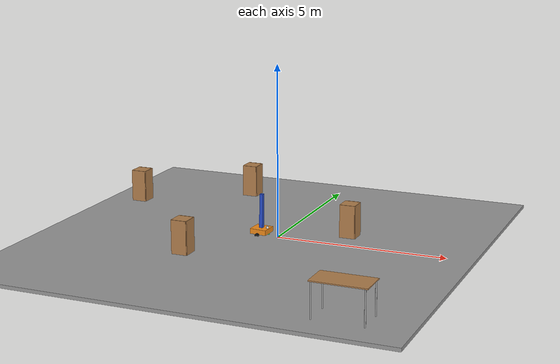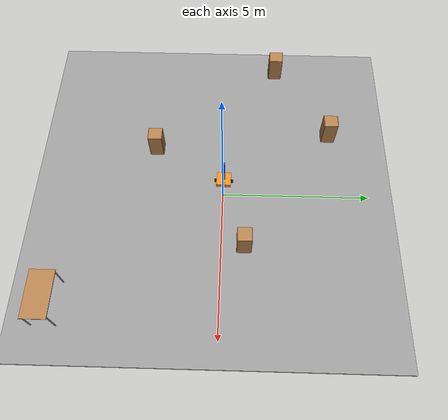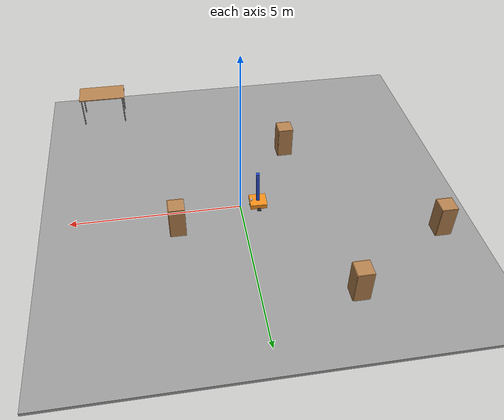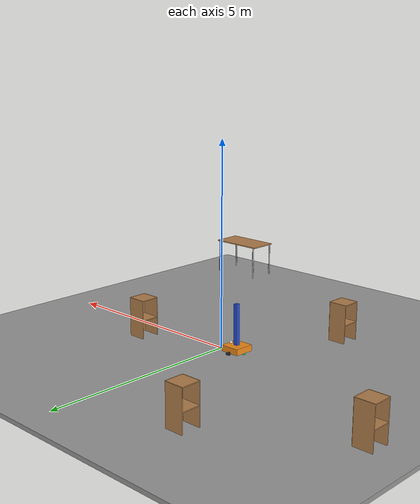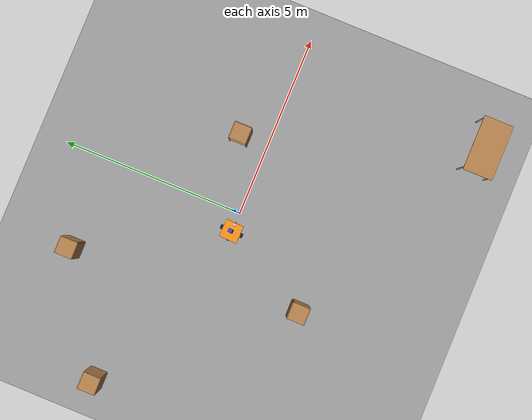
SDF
<sdf version="1.7">
 <world name="default">
  <light name="sun" type="directional">
   <pose>0 0 10 0 -0 0</pose>
   <diffuse>0.8 0.8 0.8 1</diffuse>
   <specular>0.2 0.2 0.2 1</specular>
   <attenuation>
    <range>1000</range>
    <constant>0.9</constant>
    <linear>0.01</linear>
    <quadratic>0.001</quadratic>
   </attenuation>
   <direction>-0.5 0.1 -0.9</direction>
   <spot><inner_angle>0</inner_angle><outer_angle>0</outer_angle><falloff>0</falloff></spot>
  </light>
  <model name="ground_plane">
   <static>1</static>
   <link name="link">
    <collision name="collision">
     <geometry><plane><normal>0 0 1</normal><size>100 100</size></plane></geometry>
     <surface>
      <contact><collide_bitmask>65535</collide_bitmask></contact>
      <friction><ode><mu>100</mu><mu2>50</mu2></ode></friction>
     </surface>
    </collision>
    <visual name="visual">
     <cast_shadows>0</cast_shadows>
     <geometry><plane><normal>0 0 1</normal><size>100 100</size></plane></geometry>
     <material>
      <script><uri>file://media/materials/scripts/gazebo.material</uri><name>Gazebo/Grey</name></script>
     </material>
    </visual>
   </link>
  </model>
  <gravity>0 0 -9.8</gravity>
  <magnetic_field>6e-06 2.3e-05 -4.2e-05</magnetic_field>
  <atmosphere type="adiabatic"/>
  <physics type="ode">
   <max_step_size>0.001</max_step_size>
   <real_time_factor>1</real_time_factor>
   <real_time_update_rate>1000</real_time_update_rate>
  </physics>
  <scene><ambient>0.4 0.4 0.4 1</ambient><background>0.7 0.7 0.7 1</background><shadows>1</shadows></scene>
  <spherical_coordinates>
   <surface_model>EARTH_WGS84</surface_model>
   <latitude_deg>0</latitude_deg>
   <longitude_deg>0</longitude_deg>
   <elevation>0</elevation>
   <heading_deg>0</heading_deg>
  </spherical_coordinates>
  <model name="cabinet">
   <static>1</static>
   <link name="cabinet_bottom_plate">
    <inertial>
     <pose>0 0 -1 0 -0 0</pose>
     <inertia><ixx>2.05</ixx><ixy>0</ixy><ixz>0</ixz><iyy>2.05</iyy><iyz>0</iyz><izz>2.05</izz></inertia>
     <mass>25</mass>
    </inertial>
    <collision name="cabinet_bottom_plate_geom">
     <pose>0 0 0.01 0 -0 0</pose>
     <geometry><box><size>0.45 0.45 0.02</size></box></geometry>
    </collision>
    <visual name="cabinet_bottom_plate_geom_visual">
     <pose>0 0 0.01 0 -0 0</pose>
     <geometry><box><size>0.45 0.45 0.02</size></box></geometry>
     <material>
      <script><uri>file://media/materials/scripts/gazebo.material</uri><name>Gazebo/Wood</name></script>
     </material>
    </visual>
    <collision name="cabinet_bottom_plate_geom_cabinet_back_plate">
     <pose>0.235 0 0.51 0 -0 0</pose>
     <geometry><box><size>0.02 0.45 1.02</size></box></geometry>
    </collision>
    <visual name="cabinet_bottom_plate_geom_cabinet_back_plate_visual">
     <pose>0.235 0 0.51 0 -0 0</pose>
     <geometry><box><size>0.02 0.45 1.02</size></box></geometry>
     <material>
      <script><uri>file://media/materials/scripts/gazebo.material</uri><name>Gazebo/Wood</name></script>
     </material>
    </visual>
    <collision name="cabinet_bottom_plate_geom_cabinet_left_plate">
     <pose>0 0.235 0.51 0 -0 0</pose>
     <geometry><box><size>0.45 0.02 1.02</size></box></geometry>
    </collision>
    <visual name="cabinet_bottom_plate_geom_cabinet_left_plate_visual">
     <pose>0 0.235 0.51 0 -0 0</pose>
     <geometry><box><size>0.45 0.02 1.02</size></box></geometry>
     <material>
      <script><uri>file://media/materials/scripts/gazebo.material</uri><name>Gazebo/Wood</name></script>
     </material>
    </visual>
    <collision name="cabinet_bottom_plate_geom_cabinet_middle_plate">
     <pose>0 0 0.51 0 -0 0</pose>
     <geometry><box><size>0.45 0.45 0.02</size></box></geometry>
    </collision>
    <visual name="cabinet_bottom_plate_geom_cabinet_middle_plate_visual">
     <pose>0 0 0.51 0 -0 0</pose>
     <geometry><box><size>0.45 0.45 0.02</size></box></geometry>
     <material>
      <script><uri>file://media/materials/scripts/gazebo.material</uri><name>Gazebo/Wood</name></script>
     </material>
    </visual>
    <collision name="cabinet_bottom_plate_geom_cabinet_right_plate">
     <pose>0 -0.235 0.51 0 -0 0</pose>
     <geometry><box><size>0.45 0.02 1.02</size></box></geometry>
    </collision>
    <visual name="cabinet_bottom_plate_geom_cabinet_right_plate_visual">
     <pose>0 -0.235 0.51 0 -0 0</pose>
     <geometry><box><size>0.45 0.02 1.02</size></box></geometry>
     <material>
      <script><uri>file://media/materials/scripts/gazebo.material</uri><name>Gazebo/Wood</name></script>
     </material>
    </visual>
    <collision name="cabinet_bottom_plate_geom_cabinet_top_plate">
     <pose>0 0 1.01 0 -0 0</pose>
     <geometry><box><size>0.45 0.45 0.02</size></box></geometry>
    </collision>
    <visual name="cabinet_bottom_plate_geom_cabinet_top_plate_visual">
     <pose>0 0 1.01 0 -0 0</pose>
     <geometry><box><size>0.45 0.45 0.02</size></box></geometry>
     <material>
      <script><uri>file://media/materials/scripts/gazebo.material</uri><name>Gazebo/Wood</name></script>
     </material>
    </visual>
   </link>
   <pose>-5.46896 1.86982 0 0 -0 0</pose>
  </model>
  <model name="cabinet_0">
   <static>1</static>
   <link name="cabinet_bottom_plate">
    <inertial>
     <pose>0 0 -1 0 -0 0</pose>
     <inertia><ixx>2.05</ixx><ixy>0</ixy><ixz>0</ixz><iyy>2.05</iyy><iyz>0</iyz><izz>2.05</izz></inertia>
     <mass>25</mass>
    </inertial>
    <collision name="cabinet_bottom_plate_geom">
     <pose>0 0 0.01 0 -0 0</pose>
     <geometry><box><size>0.45 0.45 0.02</size></box></geometry>
    </collision>
    <visual name="cabinet_bottom_plate_geom_visual">
     <pose>0 0 0.01 0 -0 0</pose>
     <geometry><box><size>0.45 0.45 0.02</size></box></geometry>
     <material>
      <script><uri>file://media/materials/scripts/gazebo.material</uri><name>Gazebo/Wood</name></script>
     </material>
    </visual>
    <collision name="cabinet_bottom_plate_geom_cabinet_back_plate">
     <pose>0.235 0 0.51 0 -0 0</pose>
     <geometry><box><size>0.02 0.45 1.02</size></box></geometry>
    </collision>
    <visual name="cabinet_bottom_plate_geom_cabinet_back_plate_visual">
     <pose>0.235 0 0.51 0 -0 0</pose>
     <geometry><box><size>0.02 0.45 1.02</size></box></geometry>
     <material>
      <script><uri>file://media/materials/scripts/gazebo.material</uri><name>Gazebo/Wood</name></script>
     </material>
    </visual>
    <collision name="cabinet_bottom_plate_geom_cabinet_left_plate">
     <pose>0 0.235 0.51 0 -0 0</pose>
     <geometry><box><size>0.45 0.02 1.02</size></box></geometry>
    </collision>
    <visual name="cabinet_bottom_plate_geom_cabinet_left_plate_visual">
     <pose>0 0.235 0.51 0 -0 0</pose>
     <geometry><box><size>0.45 0.02 1.02</size></box></geometry>
     <material>
      <script><uri>file://media/materials/scripts/gazebo.material</uri><name>Gazebo/Wood</name></script>
     </material>
    </visual>
    <collision name="cabinet_bottom_plate_geom_cabinet_middle_plate">
     <pose>0 0 0.51 0 -0 0</pose>
     <geometry><box><size>0.45 0.45 0.02</size></box></geometry>
    </collision>
    <visual name="cabinet_bottom_plate_geom_cabinet_middle_plate_visual">
     <pose>0 0 0.51 0 -0 0</pose>
     <geometry><box><size>0.45 0.45 0.02</size></box></geometry>
     <material>
      <script><uri>file://media/materials/scripts/gazebo.material</uri><name>Gazebo/Wood</name></script>
     </material>
    </visual>
    <collision name="cabinet_bottom_plate_geom_cabinet_right_plate">
     <pose>0 -0.235 0.51 0 -0 0</pose>
     <geometry><box><size>0.45 0.02 1.02</size></box></geometry>
    </collision>
    <visual name="cabinet_bottom_plate_geom_cabinet_right_plate_visual">
     <pose>0 -0.235 0.51 0 -0 0</pose>
     <geometry><box><size>0.45 0.02 1.02</size></box></geometry>
     <material>
      <script><uri>file://media/materials/scripts/gazebo.material</uri><name>Gazebo/Wood</name></script>
     </material>
    </visual>
    <collision name="cabinet_bottom_plate_geom_cabinet_top_plate">
     <pose>0 0 1.01 0 -0 0</pose>
     <geometry><box><size>0.45 0.45 0.02</size></box></geometry>
    </collision>
    <visual name="cabinet_bottom_plate_geom_cabinet_top_plate_visual">
     <pose>0 0 1.01 0 -0 0</pose>
     <geometry><box><size>0.45 0.45 0.02</size></box></geometry>
     <material>
      <script><uri>file://media/materials/scripts/gazebo.material</uri><name>Gazebo/Wood</name></script>
     </material>
    </visual>
   </link>
   <pose>-1.80236 -2.39541 0 0 -0 0</pose>
  </model>
  <model name="cabinet_1">
   <static>1</static>
   <link name="cabinet_bottom_plate">
    <inertial>
     <pose>0 0 -1 0 -0 0</pose>
     <inertia><ixx>2.05</ixx><ixy>0</ixy><ixz>0</ixz><iyy>2.05</iyy><iyz>0</iyz><izz>2.05</izz></inertia>
     <mass>25</mass>
    </inertial>
    <collision name="cabinet_bottom_plate_geom">
     <pose>0 0 0.01 0 -0 0</pose>
     <geometry><box><size>0.45 0.45 0.02</size></box></geometry>
    </collision>
    <visual name="cabinet_bottom_plate_geom_visual">
     <pose>0 0 0.01 0 -0 0</pose>
     <geometry><box><size>0.45 0.45 0.02</size></box></geometry>
     <material>
      <script><uri>file://media/materials/scripts/gazebo.material</uri><name>Gazebo/Wood</name></script>
     </material>
    </visual>
    <collision name="cabinet_bottom_plate_geom_cabinet_back_plate">
     <pose>0.235 0 0.51 0 -0 0</pose>
     <geometry><box><size>0.02 0.45 1.02</size></box></geometry>
    </collision>
    <visual name="cabinet_bottom_plate_geom_cabinet_back_plate_visual">
     <pose>0.235 0 0.51 0 -0 0</pose>
     <geometry><box><size>0.02 0.45 1.02</size></box></geometry>
     <material>
      <script><uri>file://media/materials/scripts/gazebo.material</uri><name>Gazebo/Wood</name></script>
     </material>
    </visual>
    <collision name="cabinet_bottom_plate_geom_cabinet_left_plate">
     <pose>0 0.235 0.51 0 -0 0</pose>
     <geometry><box><size>0.45 0.02 1.02</size></box></geometry>
    </collision>
    <visual name="cabinet_bottom_plate_geom_cabinet_left_plate_visual">
     <pose>0 0.235 0.51 0 -0 0</pose>
     <geometry><box><size>0.45 0.02 1.02</size></box></geometry>
     <material>
      <script><uri>file://media/materials/scripts/gazebo.material</uri><name>Gazebo/Wood</name></script>
     </material>
    </visual>
    <collision name="cabinet_bottom_plate_geom_cabinet_middle_plate">
     <pose>0 0 0.51 0 -0 0</pose>
     <geometry><box><size>0.45 0.45 0.02</size></box></geometry>
    </collision>
    <visual name="cabinet_bottom_plate_geom_cabinet_middle_plate_visual">
     <pose>0 0 0.51 0 -0 0</pose>
     <geometry><box><size>0.45 0.45 0.02</size></box></geometry>
     <material>
      <script><uri>file://media/materials/scripts/gazebo.material</uri><name>Gazebo/Wood</name></script>
     </material>
    </visual>
    <collision name="cabinet_bottom_plate_geom_cabinet_right_plate">
     <pose>0 -0.235 0.51 0 -0 0</pose>
     <geometry><box><size>0.45 0.02 1.02</size></box></geometry>
    </collision>
    <visual name="cabinet_bottom_plate_geom_cabinet_right_plate_visual">
     <pose>0 -0.235 0.51 0 -0 0</pose>
     <geometry><box><size>0.45 0.02 1.02</size></box></geometry>
     <material>
      <script><uri>file://media/materials/scripts/gazebo.material</uri><name>Gazebo/Wood</name></script>
     </material>
    </visual>
    <collision name="cabinet_bottom_plate_geom_cabinet_top_plate">
     <pose>0 0 1.01 0 -0 0</pose>
     <geometry><box><size>0.45 0.45 0.02</size></box></geometry>
    </collision>
    <visual name="cabinet_bottom_plate_geom_cabinet_top_plate_visual">
     <pose>0 0 1.01 0 -0 0</pose>
     <geometry><box><size>0.45 0.45 0.02</size></box></geometry>
     <material>
      <script><uri>file://media/materials/scripts/gazebo.material</uri><name>Gazebo/Wood</name></script>
     </material>
    </visual>
   </link>
   <pose>-2.5032 3.74342 0 0 -0 0</pose>
  </model>
  <model name="cabinet_2">
   <static>1</static>
   <link name="cabinet_bottom_plate">
    <inertial>
     <pose>0 0 -1 0 -0 0</pose>
     <inertia><ixx>2.05</ixx><ixy>0</ixy><ixz>0</ixz><iyy>2.05</iyy><iyz>0</iyz><izz>2.05</izz></inertia>
     <mass>25</mass>
    </inertial>
    <collision name="cabinet_bottom_plate_geom">
     <pose>0 0 0.01 0 -0 0</pose>
     <geometry><box><size>0.45 0.45 0.02</size></box></geometry>
    </collision>
    <visual name="cabinet_bottom_plate_geom_visual">
     <pose>0 0 0.01 0 -0 0</pose>
     <geometry><box><size>0.45 0.45 0.02</size></box></geometry>
     <material>
      <script><uri>file://media/materials/scripts/gazebo.material</uri><name>Gazebo/Wood</name></script>
     </material>
    </visual>
    <collision name="cabinet_bottom_plate_geom_cabinet_back_plate">
     <pose>0.235 0 0.51 0 -0 0</pose>
     <geometry><box><size>0.02 0.45 1.02</size></box></geometry>
    </collision>
    <visual name="cabinet_bottom_plate_geom_cabinet_back_plate_visual">
     <pose>0.235 0 0.51 0 -0 0</pose>
     <geometry><box><size>0.02 0.45 1.02</size></box></geometry>
     <material>
      <script><uri>file://media/materials/scripts/gazebo.material</uri><name>Gazebo/Wood</name></script>
     </material>
    </visual>
    <collision name="cabinet_bottom_plate_geom_cabinet_left_plate">
     <pose>0 0.235 0.51 0 -0 0</pose>
     <geometry><box><size>0.45 0.02 1.02</size></box></geometry>
    </collision>
    <visual name="cabinet_bottom_plate_geom_cabinet_left_plate_visual">
     <pose>0 0.235 0.51 0 -0 0</pose>
     <geometry><box><size>0.45 0.02 1.02</size></box></geometry>
     <material>
      <script><uri>file://media/materials/scripts/gazebo.material</uri><name>Gazebo/Wood</name></script>
     </material>
    </visual>
    <collision name="cabinet_bottom_plate_geom_cabinet_middle_plate">
     <pose>0 0 0.51 0 -0 0</pose>
     <geometry><box><size>0.45 0.45 0.02</size></box></geometry>
    </collision>
    <visual name="cabinet_bottom_plate_geom_cabinet_middle_plate_visual">
     <pose>0 0 0.51 0 -0 0</pose>
     <geometry><box><size>0.45 0.45 0.02</size></box></geometry>
     <material>
      <script><uri>file://media/materials/scripts/gazebo.material</uri><name>Gazebo/Wood</name></script>
     </material>
    </visual>
    <collision name="cabinet_bottom_plate_geom_cabinet_right_plate">
     <pose>0 -0.235 0.51 0 -0 0</pose>
     <geometry><box><size>0.45 0.02 1.02</size></box></geometry>
    </collision>
    <visual name="cabinet_bottom_plate_geom_cabinet_right_plate_visual">
     <pose>0 -0.235 0.51 0 -0 0</pose>
     <geometry><box><size>0.45 0.02 1.02</size></box></geometry>
     <material>
      <script><uri>file://media/materials/scripts/gazebo.material</uri><name>Gazebo/Wood</name></script>
     </material>
    </visual>
    <collision name="cabinet_bottom_plate_geom_cabinet_top_plate">
     <pose>0 0 1.01 0 -0 0</pose>
     <geometry><box><size>0.45 0.45 0.02</size></box></geometry>
    </collision>
    <visual name="cabinet_bottom_plate_geom_cabinet_top_plate_visual">
     <pose>0 0 1.01 0 -0 0</pose>
     <geometry><box><size>0.45 0.45 0.02</size></box></geometry>
     <material>
      <script><uri>file://media/materials/scripts/gazebo.material</uri><name>Gazebo/Wood</name></script>
     </material>
    </visual>
   </link>
   <pose>1.91112 0.748383 0 0 -0 0</pose>
  </model>
  <audio><device>default</device></audio>
  <model name="my_bot">
   <link name="base_link">
    <inertial>
     <pose>0.002289 0 0.206416 0 -0 0</pose>
     <mass>8.3</mass>
     <inertia>
      <ixx>1.00377</ixx>
      <ixy>0</ixy>
      <ixz>0.0019744</ixz>
      <iyy>1.01886</iyy>
      <iyz>0</iyz>
      <izz>0.220329</izz>
     </inertia>
    </inertial>
    <collision name="base_link_fixed_joint_lump__chassis_link_collision">
     <geometry><box><size>0.49 0.49 0.15</size></box></geometry>
    </collision>
    <collision name="base_link_fixed_joint_lump__caster_wheel_collision_1">
     <pose>-0.24 0 -0.11 0 -0 0</pose>
     <geometry><sphere><radius>0.035</radius></sphere></geometry>
     <surface><friction><ode><mu>0.001</mu><mu2>0.001</mu2></ode></friction></surface>
    </collision>
    <collision name="base_link_fixed_joint_lump__caster_wheel2_collision_2">
     <pose>0.24 0 -0.11 0 -0 0</pose>
     <geometry><sphere><radius>0.035</radius></sphere></geometry>
     <surface><friction><ode><mu>0.001</mu><mu2>0.001</mu2></ode></friction></surface>
    </collision>
    <collision name="base_link_fixed_joint_lump__laser_frame_collision_3">
     <pose>0.19 0 0.1025 0 -0 3.1415</pose>
     <geometry><cylinder><length>0.055</length><radius>0.035</radius></cylinder></geometry>
    </collision>
    <collision name="base_link_fixed_joint_lump__light_tube_collision_4">
     <pose>0 0 0.575 0 -0 0</pose>
     <geometry><box><size>0.1 0.1 1</size></box></geometry>
    </collision>
    <visual name="base_link_fixed_joint_lump__chassis_link_visual">
     <geometry><box><size>0.49 0.49 0.15</size></box></geometry>
     <material>
      <script><name>Gazebo/Orange</name><uri>file://media/materials/scripts/gazebo.material</uri></script>
     </material>
    </visual>
    <visual name="base_link_fixed_joint_lump__caster_wheel_visual_1">
     <pose>-0.24 0 -0.11 0 -0 0</pose>
     <geometry><sphere><radius>0.035</radius></sphere></geometry>
     <material>
      <script><name>Gazebo/Green</name><uri>file://media/materials/scripts/gazebo.material</uri></script>
     </material>
    </visual>
    <visual name="base_link_fixed_joint_lump__caster_wheel2_visual_2">
     <pose>0.24 0 -0.11 0 -0 0</pose>
     <geometry><sphere><radius>0.035</radius></sphere></geometry>
     <material>
      <script><name>Gazebo/Green</name><uri>file://media/materials/scripts/gazebo.material</uri></script>
     </material>
    </visual>
    <visual name="base_link_fixed_joint_lump__laser_frame_visual_3">
     <pose>0.19 0 0.1025 0 -0 3.1415</pose>
     <geometry><cylinder><length>0.055</length><radius>0.035</radius></cylinder></geometry>
     <material>
      <script><name>Gazebo/White</name><uri>file://media/materials/scripts/gazebo.material</uri></script>
     </material>
    </visual>
    <visual name="base_link_fixed_joint_lump__light_tube_visual_4">
     <pose>0 0 0.575 0 -0 0</pose>
     <geometry><box><size>0.1 0.1 1</size></box></geometry>
     <material>
      <script><name>Gazebo/Blue</name><uri>file://media/materials/scripts/gazebo.material</uri></script>
     </material>
    </visual>
    <sensor name="laser" type="ray">
     <visualize>0</visualize>
     <update_rate>10</update_rate>
     <ray>
      <scan>
       <horizontal>
        <samples>360</samples>
        <min_angle>-3.14</min_angle>
        <max_angle>3.14</max_angle>
        <resolution>1</resolution>
       </horizontal>
       <vertical><samples>1</samples><min_angle>0</min_angle><max_angle>0</max_angle></vertical>
      </scan>
      <range><min>0.3</min><max>12</max></range>
     </ray>
     <plugin name="laser_controller" filename="libgazebo_ros_ray_sensor.so">
      <ros><argument>~/out:=scan</argument></ros>
      <output_type>sensor_msgs/LaserScan</output_type>
      <frame_name>laser_frame</frame_name>
     </plugin>
     <pose>0.19 0 0.1025 0 -0 3.1415</pose>
    </sensor>
   </link>
   <joint name="left_wheel_joint" type="revolute">
    <pose relative_to="base_link">0 0.29 -0.09 -1.5708 0 0</pose>
    <parent>base_link</parent>
    <child>left_wheel</child>
    <axis>
     <xyz>0 0 1</xyz>
     <limit><lower>-1e+16</lower><upper>1e+16</upper></limit>
     <dynamics><spring_reference>0</spring_reference><spring_stiffness>0</spring_stiffness></dynamics>
    </axis>
   </joint>
   <link name="left_wheel">
    <pose relative_to="left_wheel_joint">0 0 0 0 -0 0</pose>
    <inertial>
     <mass>0.2</mass>
     <inertia><ixx>0.00024</ixx><ixy>0</ixy><ixz>0</ixz><iyy>0.00024</iyy><iyz>0</iyz><izz>0.00036</izz></inertia>
    </inertial>
    <collision name="left_wheel_collision"><geometry><sphere><radius>0.06</radius></sphere></geometry></collision>
    <visual name="left_wheel_visual">
     <geometry><cylinder><length>0.06</length><radius>0.06</radius></cylinder></geometry>
     <material>
      <script><name>Gazebo/Black</name><uri>file://media/materials/scripts/gazebo.material</uri></script>
     </material>
    </visual>
   </link>
   <joint name="right_wheel_joint" type="revolute">
    <pose relative_to="base_link">0 -0.29 -0.09 -1.5708 0 0</pose>
    <parent>base_link</parent>
    <child>right_wheel</child>
    <axis>
     <xyz>0 0 1</xyz>
     <limit><lower>-1e+16</lower><upper>1e+16</upper></limit>
     <dynamics><spring_reference>0</spring_reference><spring_stiffness>0</spring_stiffness></dynamics>
    </axis>
   </joint>
   <link name="right_wheel">
    <pose relative_to="right_wheel_joint">0 0 0 0 -0 0</pose>
    <inertial>
     <mass>0.2</mass>
     <inertia><ixx>0.00024</ixx><ixy>0</ixy><ixz>0</ixz><iyy>0.00024</iyy><iyz>0</iyz><izz>0.00036</izz></inertia>
    </inertial>
    <collision name="right_wheel_collision">
     <geometry><sphere><radius>0.06</radius></sphere></geometry>
    </collision>
    <visual name="right_wheel_visual">
     <geometry><cylinder><length>0.06</length><radius>0.06</radius></cylinder></geometry>
     <material>
      <script><name>Gazebo/Black</name><uri>file://media/materials/scripts/gazebo.material</uri></script>
     </material>
    </visual>
   </link>
   <static>0</static>
   <plugin name="gazebo_ros2_control" filename="libgazebo_ros2_control.so">
    <parameters>/home/alejandro/diff_ws/install/diff_pkg/share/diff_pkg/config/my_controller.yaml</parameters>
    <parameters>/home/alejandro/diff_ws/install/diff_pkg/share/diff_pkg/config/gaz_ros2_ctl_use_sim.yaml</parameters>
   </plugin>
   <pose>-0.52378 0.021504 0.14998 0 0.020791 -0.042182</pose>
  </model>
  <model name="ground_plane_0">
   <static>1</static>
   <link name="link">
    <collision name="collision">
     <geometry><plane><normal>0 0 1</normal><size>100 100</size></plane></geometry>
     <surface><friction><ode><mu>100</mu><mu2>50</mu2></ode></friction></surface>
    </collision>
    <visual name="visual">
     <cast_shadows>0</cast_shadows>
     <geometry><plane><normal>0 0 1</normal><size>100 100</size></plane></geometry>
     <material>
      <script><uri>file://media/materials/scripts/gazebo.material</uri><name>Gazebo/Grey</name></script>
     </material>
    </visual>
   </link>
   <pose>-3.67849 1.42816 0 0 -0 0</pose>
  </model>
  <model name="table">
   <static>1</static>
   <link name="link">
    <collision name="surface">
     <pose>0 0 1 0 -0 0</pose>
     <geometry><box><size>1.5 0.8 0.03</size></box></geometry>
     <surface><friction><ode><mu>0.6</mu><mu2>0.6</mu2></ode></friction></surface>
    </collision>
    <visual name="visual1">
     <pose>0 0 1 0 -0 0</pose>
     <geometry><box><size>1.5 0.8 0.03</size></box></geometry>
     <material>
      <script><uri>file://media/materials/scripts/gazebo.material</uri><name>Gazebo/Wood</name></script>
     </material>
    </visual>
    <collision name="front_left_leg">
     <pose>0.68 0.38 0.5 0 -0 0</pose>
     <geometry><cylinder><radius>0.02</radius><length>1</length></cylinder></geometry>
    </collision>
    <visual name="front_left_leg">
     <pose>0.68 0.38 0.5 0 -0 0</pose>
     <geometry><cylinder><radius>0.02</radius><length>1</length></cylinder></geometry>
     <material>
      <script><uri>file://media/materials/scripts/gazebo.material</uri><name>Gazebo/Grey</name></script>
     </material>
    </visual>
    <collision name="front_right_leg">
     <pose>0.68 -0.38 0.5 0 -0 0</pose>
     <geometry><cylinder><radius>0.02</radius><length>1</length></cylinder></geometry>
    </collision>
    <visual name="front_right_leg">
     <pose>0.68 -0.38 0.5 0 -0 0</pose>
     <geometry><cylinder><radius>0.02</radius><length>1</length></cylinder></geometry>
     <material>
      <script><uri>file://media/materials/scripts/gazebo.material</uri><name>Gazebo/Grey</name></script>
     </material>
    </visual>
    <collision name="back_right_leg">
     <pose>-0.68 -0.38 0.5 0 -0 0</pose>
     <geometry><cylinder><radius>0.02</radius><length>1</length></cylinder></geometry>
    </collision>
    <visual name="back_right_leg">
     <pose>-0.68 -0.38 0.5 0 -0 0</pose>
     <geometry><cylinder><radius>0.02</radius><length>1</length></cylinder></geometry>
     <material>
      <script><uri>file://media/materials/scripts/gazebo.material</uri><name>Gazebo/Grey</name></script>
     </material>
    </visual>
    <collision name="back_left_leg">
     <pose>-0.68 0.38 0.5 0 -0 0</pose>
     <geometry><cylinder><radius>0.02</radius><length>1</length></cylinder></geometry>
    </collision>
    <visual name="back_left_leg">
     <pose>-0.68 0.38 0.5 0 -0 0</pose>
     <geometry><cylinder><radius>0.02</radius><length>1</length></cylinder></geometry>
     <material>
      <script><uri>file://media/materials/scripts/gazebo.material</uri><name>Gazebo/Grey</name></script>
     </material>
    </visual>
   </link>
   <pose>3.97614 -5.29411 0 0 -0 0</pose>
  </model>
 </world>
</sdf>
